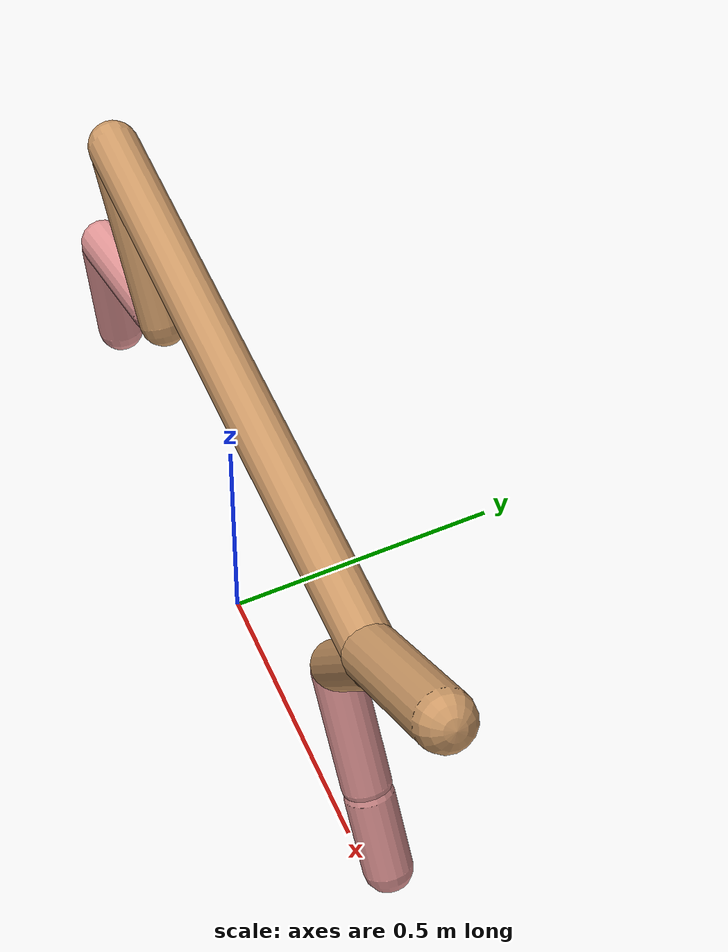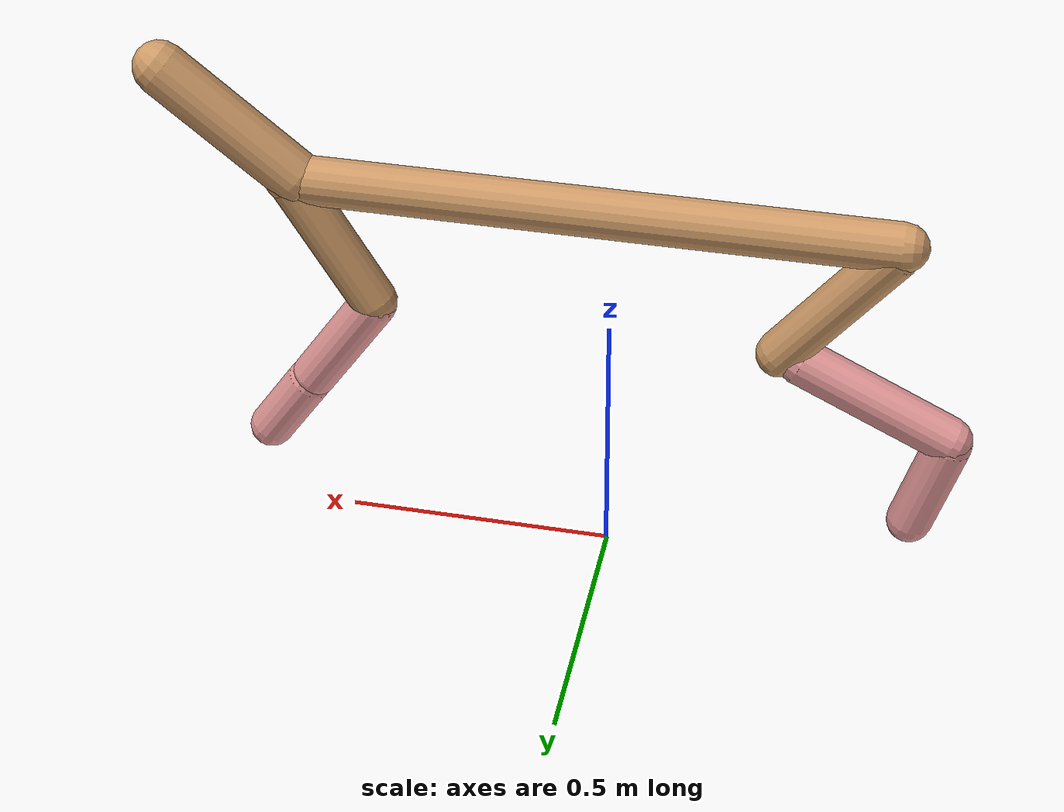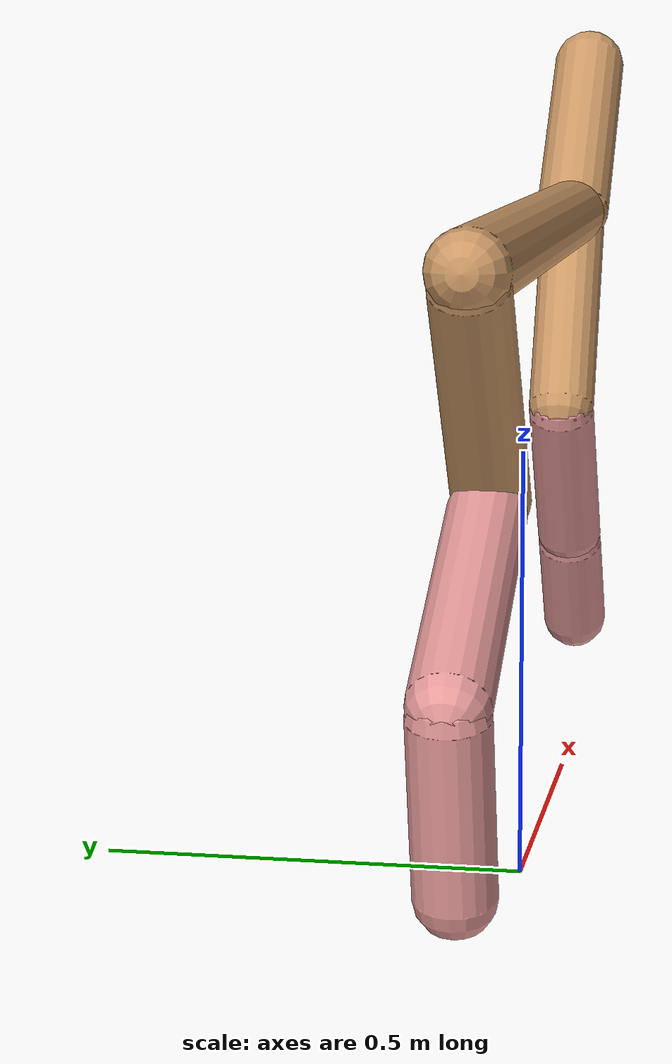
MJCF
<mujoco model="cheetah">
  <compiler angle="radian" coordinate="local" inertiafromgeom="true" settotalmass="14" />
  <default>
    <joint armature=".1" damping=".01" limited="true" solimplimit="0 .8 .03" solreflimit=".02 1" stiffness="8" />
    <geom conaffinity="0" condim="3" contype="1" friction="0.8 .1 .1" rgba="0.8 0.6 .4 1" solimp="0.0 0.8 0.01" solref="0.02 1" />
    <motor ctrllimited="true" ctrlrange="-1 1" />
  </default>
  <size nstack="300000" nuser_geom="1" />
  <option gravity="0 0 -9.81" timestep="0.01" />
  <worldbody>
    <body name="torso" pos="0.0 0.0 0.7456665937364256">
      <joint armature="0" axis="1 0 0" damping="0" limited="false" name="ignorex" pos="0 0 0" stiffness="0" type="slide" />
      <joint armature="0" axis="0 0 1" damping="0" limited="false" name="ignorez" pos="0 0 0" stiffness="0" type="slide" />
      <joint armature="0" axis="0 1 0" damping="0" limited="false" name="ignorey" pos="0 0 0" stiffness="0" type="hinge" />
      <geom fromto="-0.5 0.0 0.0 0.577225527787577 0.0 0.0" name="torso" size="0.04399301812996313" type="capsule" />
      <geom axisangle="0 1 0 .87" name="head" pos="0.677225527787577 0.0 0.1" size="0.0482741851683807 0.15" type="capsule" />

      <body name="bthigh" pos="-.5 0 0">
        <joint axis="0 1 0" damping="6" name="bthigh" pos="0 0 0" range="-.52 1.05" stiffness="240" type="hinge" />
        <geom axisangle="0 1 0 -3.8" name="bthigh" pos="0.10342143641847902 0.0 -0.13444786734402273" size="0.042503350371403945 0.15061157295913705" type="capsule" />
        <body name="bshin" pos="0.16684287283695803 0.0 -0.25889573468804544">
          <joint axis="0 1 0" damping="4.5" name="bshin" pos="0 0 0" range="-.785 .785" stiffness="180" type="hinge" />
          <geom axisangle="0 1 0 -2.03" name="bshin" pos="-0.14519221735061935 0.0 -0.07259610867530968" rgba="0.9 0.6 0.6 1" size="0.042503350371403945 0.15580507547496936" type="capsule" />
          <body name="bfoot" pos="-0.2903844347012387 0.0 -0.14519221735061935">
            <joint axis="0 1 0" damping="3" name="bfoot" pos="0 0 0" range="-.4 .785" stiffness="120" type="hinge" />
            <geom axisangle="0 1 0 -.27" name="bfoot" pos="0.03107487373306869 0.0 -0.10047542507025543" rgba="0.9 0.6 0.6 1" size="0.042503350371403945 0.09763784729764748" type="capsule" />
            <inertial mass="10" />
          </body>
        </body>
      </body>
      <body name="fthigh" pos="0.5772255277875771 0.0 0.0">
        <joint axis="0 1 0" damping="4.5" name="fthigh" pos="0 0 0" range="-1.5 0.8" stiffness="180" type="hinge" />
        <geom axisangle="0 1 0 .52" name="fthigh" pos="-0.07304198778824275 0.0 -0.1252148362084161" size="0.04240608493389461 0.13903723499496465" type="capsule" />
        <body name="fshin" pos="-0.1460839755764855 0.0 -0.2504296724168322">
          <joint axis="0 1 0" damping="3" name="fshin" pos="0 0 0" range="-1.2 1.1" stiffness="120" type="hinge" />
          <geom axisangle="0 1 0 -.6" name="fshin" pos="0.06781716443950664 0.0 -0.09390068922393226" rgba="0.9 0.6 0.6 1" size="0.04240608493389461 0.11081163089824249" type="capsule" />
          <body name="ffoot" pos="0.13563432887901328 0.0 -0.18780137844786451">
            <joint axis="0 1 0" damping="1.5" name="ffoot" pos="0 0 0" range="-3.1 -0.3" stiffness="60" type="hinge" />
            <geom axisangle="0 1 0 -.6" name="ffoot" pos="0.04671825297582665 0.0 -0.07267283796239703" rgba="0.9 0.6 0.6 1" size="0.04240608493389461 0.07317749210261297" type="capsule" />
            <inertial mass="10" />
          </body>
        </body>
      </body>
    </body>
  </worldbody>
  <actuator>
    <motor gear="120" joint="bthigh" name="bthigh" />
    <motor gear="90" joint="bshin" name="bshin" />
    <motor gear="60" joint="bfoot" name="bfoot" />
    <motor gear="120" joint="fthigh" name="fthigh" />
    <motor gear="60" joint="fshin" name="fshin" />
    <motor gear="30" joint="ffoot" name="ffoot" />
  </actuator>
</mujoco>
